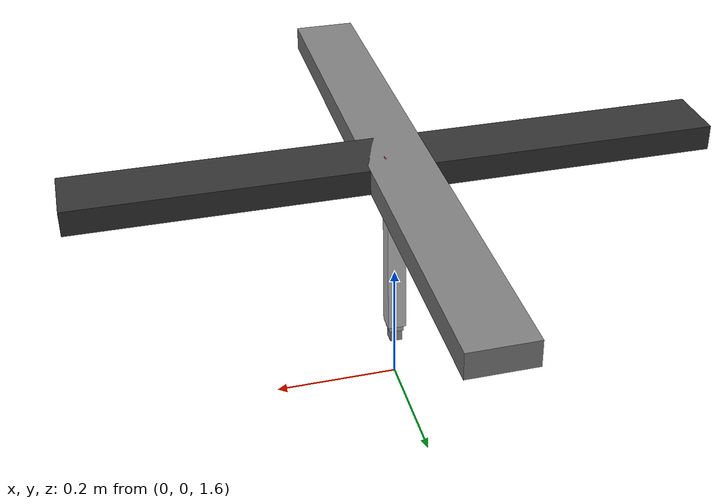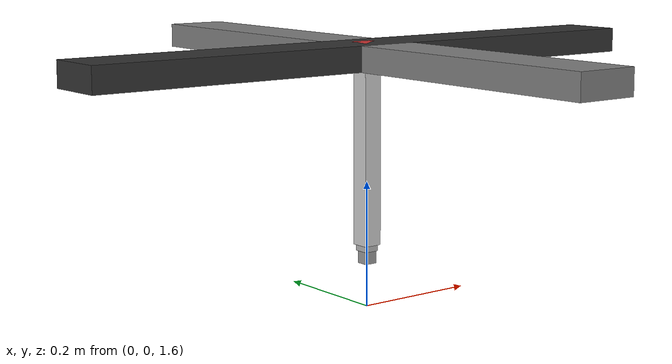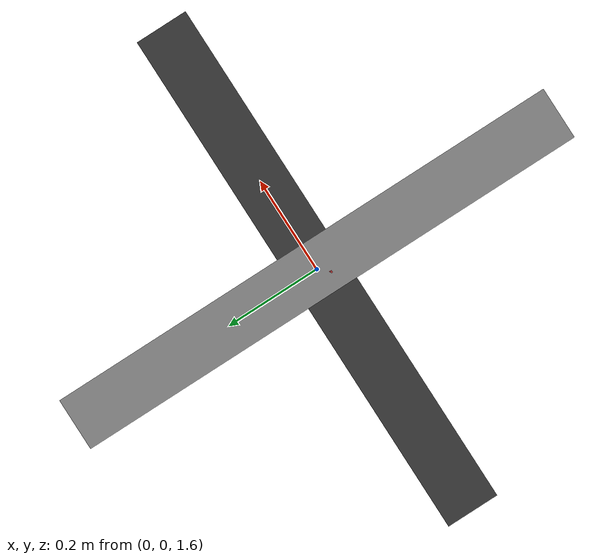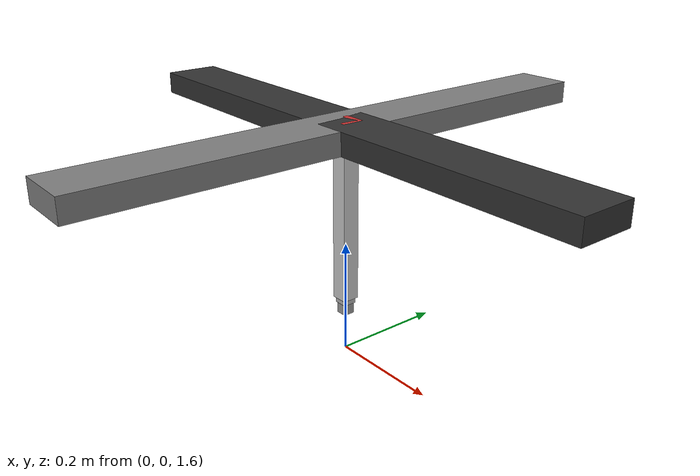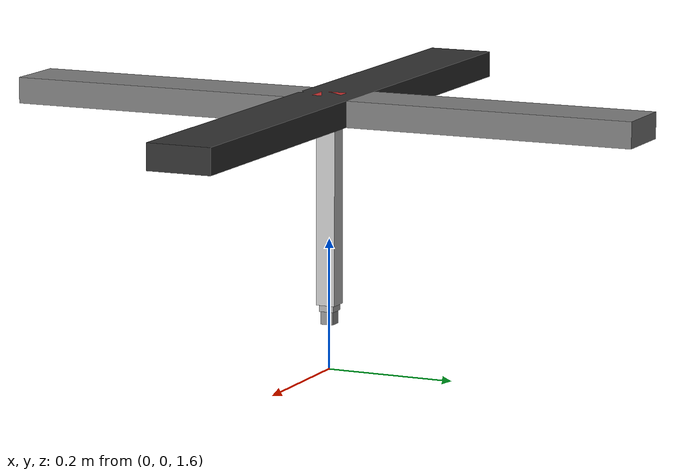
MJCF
<?xml version="1.0" encoding="utf-8"?>
<mujoco model="crane_game">
    <compiler angle="radian" autolimits="true"/>

    <default>
        <joint armature="1" damping="1" limited="true"/>
        <motor ctrllimited="true" ctrlrange="-1 1"/>
        <default class="track">
            <joint type="slide" damping="100" stiffness="0"/>
            <geom type="box" rgba="0.7 0.7 0.7 1" contype="1" conaffinity="1"/>
        </default>
        <default class="telescope">
            <joint type="slide" damping="200" stiffness="0"/>
            <geom type="box" rgba="0.7 0.7 0.7 1" contype="1" conaffinity="1"/>
        </default>
    </default>

    <contact>
        <exclude body1="x_rail" body2="top_frame"/>
        <exclude body1="y_rail" body2="top_frame"/>
        <exclude body1="z_mechanism" body2="top_frame"/>
        <exclude body1="telescopic_segment1" body2="top_frame"/>
        <exclude body1="telescopic_segment2" body2="top_frame"/>
        <exclude body1="telescopic_segment3" body2="top_frame"/>

        <exclude body1="x_rail" body2="y_rail"/>
        <exclude body1="y_rail" body2="z_mechanism"/>
        <exclude body1="x_rail" body2="z_mechanism"/>

        <exclude body1="y_rail" body2="telescopic_segment1"/>
        <exclude body1="y_rail" body2="telescopic_segment2"/>
        <exclude body1="y_rail" body2="telescopic_segment3"/>
        <exclude body1="x_rail" body2="telescopic_segment1"/>
        <exclude body1="x_rail" body2="telescopic_segment2"/>
        <exclude body1="x_rail" body2="telescopic_segment3"/>
        <exclude body1="z_mechanism" body2="telescopic_segment1"/>
        <exclude body1="z_mechanism" body2="telescopic_segment2"/>
        <exclude body1="z_mechanism" body2="telescopic_segment3"/>

        <exclude body1="telescopic_segment1" body2="telescopic_segment2"/>
        <exclude body1="telescopic_segment1" body2="telescopic_segment3"/>
        <exclude body1="telescopic_segment2" body2="telescopic_segment3"/>
    </contact>

    <worldbody>
        <!-- Top frame -->
        <body name="top_frame" pos="0 0 2">
            <geom type="box" size="0.5 0.05 0.02" rgba="0.2 0.2 0.2 1" contype="1" conaffinity="1"/>

            <!-- X-axis rail -->
            <body name="x_rail" pos="0 0 0">
                <joint name="x_slider" class="track" axis="1 0 0" range="-0.4 0.4"/>
                <geom type="box" size="0.05 0.5 0.02"/>

                <!-- Y-axis rail -->
                <body name="y_rail" pos="0 0 0">
                    <joint name="y_slider" class="track" axis="0 1 0" range="-0.4 0.4"/>
                    <geom type="box" size="0.02 0.02 0.02" rgba="0.8 0.2 0.2 1"/>

                    <!-- Z-axis mechanism with telescoping segments -->
                    <body name="z_mechanism" pos="0 0 0">
                         <!-- First (top) telescopic segment -->
                        <body name="telescopic_segment1" pos="0 0 -0.15">
                            <geom type="box" size="0.015 0.015 0.15" rgba="0.8 0.8 0.8 1"/>

                            <!-- Second telescopic segment -->
                            <body name="telescopic_segment2" pos="0 0 -0.01">
                                <joint name="segment2_joint" class="telescope" axis="0 0 1" range="-.2 0"/>
                                <geom type="box" size="0.012 0.012 0.15" rgba="0.7 0.7 0.7 1"/>

                                <!-- Third (bottom) telescopic segment -->
                                <body name="telescopic_segment3" pos="0 0 -0.02">
                                    <joint name="z_slider" class="telescope" axis="0 0 1" range="-0.4 0"/>
                                    <geom type="box" size="0.01 0.01 0.15" rgba="0.6 0.6 0.6 1"/>
                                </body>
                            </body>
                        </body>
                    </body>
                </body>
            </body>
        </body>
    </worldbody>

    <equality>
        <!-- Proportional extension constraints -->
        <joint joint1="z_slider" joint2="segment2_joint" polycoef="0 1.0 0 0 0"/>
    </equality>

    <actuator>
        <position name="x_servo" joint="x_slider" kp="100"/>
        <position name="y_servo" joint="y_slider" kp="100"/>
        <position name="z_servo" joint="z_slider" kp="100"/>
    </actuator>
</mujoco>
